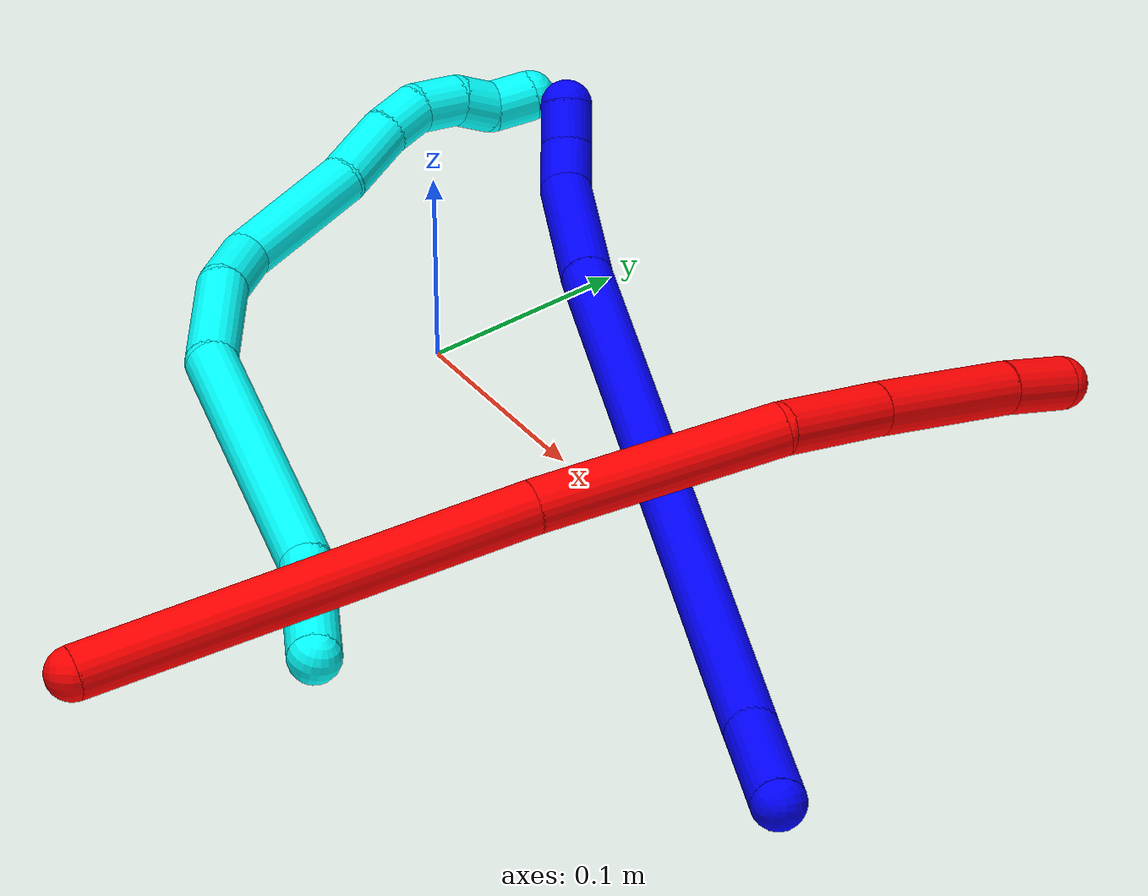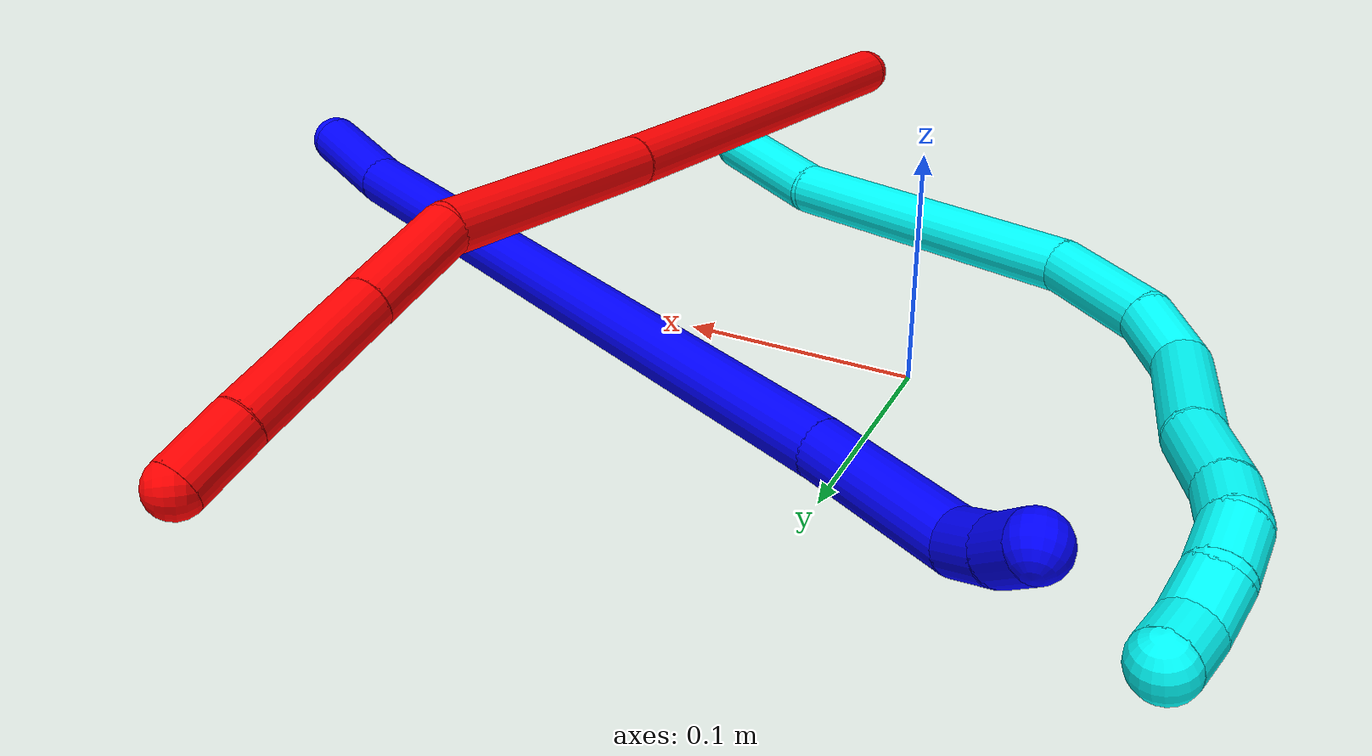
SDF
<sdf version="1.7">
 <world name="default">
  <model name="photoneo_s_sensor">
   <static>1</static>
   <pose>0 0 2 1.57079 1.57079 3.14159</pose>
   <link name="link">
    <inertial><mass>0.1</mass></inertial>
    <sensor name="sensor" type="depth">
     <update_rate>30</update_rate>
     <camera>
      <horizontal_fov>1.22</horizontal_fov>
      <image><width>1920</width><height>1200</height><format>B8G8R8</format></image>
      <clip><near>0.1</near><far>4</far></clip>
      <depth_camera><output>points</output></depth_camera>
     </camera>
     <plugin name="camera_plugin" filename="libgazebo_ros_depth_camera.so">
      <baseline>0.2</baseline>
      <alwaysOn>1</alwaysOn>
      <updateRate>0.0</updateRate>
      <cameraName>camera_ir</cameraName>
      <imageTopicName>/camera/color/image_raw</imageTopicName>
      <cameraInfoTopicName>/camera/color/camera_info</cameraInfoTopicName>
      <depthImageTopicName>/camera/depth/image_raw</depthImageTopicName>
      <depthImageCameraInfoTopicName>/camera/depth/camera_info</depthImageCameraInfoTopicName>
      <pointCloudTopicName>/camera/depth/points</pointCloudTopicName>
      <frameName>fr_optical</frameName>
      <pointCloudCutoff>0.1</pointCloudCutoff>
      <pointCloudCutoffMax>2.0</pointCloudCutoffMax>
      <distortionK1>0</distortionK1>
      <distortionK2>0</distortionK2>
      <distortionK3>0</distortionK3>
      <distortionT1>0</distortionT1>
      <distortionT2>0</distortionT2>
      <CxPrime>0</CxPrime>
      <Cx>0</Cx>
      <Cy>0</Cy>
      <focalLength>0</focalLength>
      <hackBaseline>0</hackBaseline>
     </plugin>
    </sensor>
   </link>
  </model>
  <model name="bin">
   <static>1</static>
   <link name="bottom">
    <collision name="collision-bottom">
     <pose>0 0 -0.01 0 -0 0</pose>
     <geometry><box><size>0.8 0.6 0.02</size></box></geometry>
     <surface>
      <friction><ode><mu>100</mu><mu2>100</mu2></ode></friction>
      <contact><collide_bitmask>65535</collide_bitmask></contact>
     </surface>
    </collision>
   </link>
   <link name="west_wall">
    <collision name="collision-west_wall">
     <pose>-0.41 0 0.1 0 -0 0</pose>
     <geometry><box><size>0.02 0.6 0.2</size></box></geometry>
     <surface>
      <friction><ode><mu>100</mu><mu2>100</mu2></ode></friction>
      <contact><collide_bitmask>65535</collide_bitmask></contact>
     </surface>
    </collision>
   </link>
   <link name="east_wall">
    <collision name="collision-east_wall">
     <pose>0.41 0 0.1 0 -0 0</pose>
     <geometry><box><size>0.02 0.6 0.2</size></box></geometry>
     <surface>
      <friction><ode><mu>100</mu><mu2>100</mu2></ode></friction>
      <contact><collide_bitmask>65535</collide_bitmask></contact>
     </surface>
    </collision>
   </link>
   <link name="south_wall">
    <collision name="collision-south_wall">
     <pose>0 -0.31 0.1 0 -0 0</pose>
     <geometry><box><size>0.8 0.02 0.2</size></box></geometry>
     <surface>
      <friction><ode><mu>100</mu><mu2>100</mu2></ode></friction>
      <contact><collide_bitmask>65535</collide_bitmask></contact>
     </surface>
    </collision>
   </link>
   <link name="north_wall">
    <collision name="collision-north_wall">
     <pose>0 0.31 0.1 0 -0 0</pose>
     <geometry><box><size>0.8 0.02 0.2</size></box></geometry>
     <surface>
      <friction><ode><mu>100</mu><mu2>100</mu2></ode></friction>
      <contact><collide_bitmask>65535</collide_bitmask></contact>
     </surface>
    </collision>
   </link>
  </model>
  <model name="1">
   <static>0</static>
   <link name="1">
    <collision name="collision-cylinder-e_1_1_4">
     <pose>-0.020728 -0.006324 -0.016088 2.76704 -0.87568 -2.37235</pose>
     <geometry><cylinder><radius>0.0125</radius><length>0.05398</length></cylinder></geometry>
     <surface>
      <friction><ode><mu>1.16</mu><mu2>1.16</mu2><slip1>0</slip1><slip2>0</slip2></ode></friction>
      <contact><ode><kp>1e+06</kp><kd>1</kd><max_vel>0</max_vel><min_depth>0.001</min_depth></ode></contact>
     </surface>
    </collision>
    <visual name="visual-cylinder-e_1_1_4">
     <pose>-0.020728 -0.006324 -0.016088 2.76704 -0.87568 -2.37235</pose>
     <geometry><cylinder><radius>0.0125</radius><length>0.05398</length></cylinder></geometry>
     <material><ambient>0 0 1 1</ambient></material>
    </visual>
    <collision name="collision-cylinder-e_2_4_5">
     <pose>-0.178863 -0.038031 -0.120422 2.86152 -0.98169 -2.62587</pose>
     <geometry><cylinder><radius>0.0125</radius><length>0.33053</length></cylinder></geometry>
     <surface>
      <friction><ode><mu>1.16</mu><mu2>1.16</mu2><slip1>0</slip1><slip2>0</slip2></ode></friction>
      <contact><ode><kp>1e+06</kp><kd>1</kd><max_vel>0</max_vel><min_depth>0.001</min_depth></ode></contact>
     </surface>
    </collision>
    <visual name="visual-cylinder-e_2_4_5">
     <pose>-0.178863 -0.038031 -0.120422 2.86152 -0.98169 -2.62587</pose>
     <geometry><cylinder><radius>0.0125</radius><length>0.33053</length></cylinder></geometry>
     <material><ambient>0 0 1 1</ambient></material>
    </visual>
    <collision name="collision-cylinder-e_3_5_6">
     <pose>-0.344973 -0.067262 -0.229293 2.95711 -0.939599 -2.78116</pose>
     <geometry><cylinder><radius>0.0125</radius><length>0.071106</length></cylinder></geometry>
     <surface>
      <friction><ode><mu>1.16</mu><mu2>1.16</mu2><slip1>0</slip1><slip2>0</slip2></ode></friction>
      <contact><ode><kp>1e+06</kp><kd>1</kd><max_vel>0</max_vel><min_depth>0.001</min_depth></ode></contact>
     </surface>
    </collision>
    <visual name="visual-cylinder-e_3_5_6">
     <pose>-0.344973 -0.067262 -0.229293 2.95711 -0.939599 -2.78116</pose>
     <geometry><cylinder><radius>0.0125</radius><length>0.071106</length></cylinder></geometry>
     <material><ambient>0 0 1 1</ambient></material>
    </visual>
    <collision name="collision-cylinder-e_4_6_7">
     <pose>-0.383408 -0.067005 -0.255105 -2.47216 -0.973713 1.97899</pose>
     <geometry><cylinder><radius>0.0125</radius><length>0.023536</length></cylinder></geometry>
     <surface>
      <friction><ode><mu>1.16</mu><mu2>1.16</mu2><slip1>0</slip1><slip2>0</slip2></ode></friction>
      <contact><ode><kp>1e+06</kp><kd>1</kd><max_vel>0</max_vel><min_depth>0.001</min_depth></ode></contact>
     </surface>
    </collision>
    <visual name="visual-cylinder-e_4_6_7">
     <pose>-0.383408 -0.067005 -0.255105 -2.47216 -0.973713 1.97899</pose>
     <geometry><cylinder><radius>0.0125</radius><length>0.023536</length></cylinder></geometry>
     <material><ambient>0 0 1 1</ambient></material>
    </visual>
    <collision name="collision-cylinder-e_5_7_2">
     <pose>-0.401753 -0.057852 -0.263295 -2.10717 -0.972416 1.49732</pose>
     <geometry><cylinder><radius>0.0125</radius><length>0.020848</length></cylinder></geometry>
     <surface>
      <friction><ode><mu>1.16</mu><mu2>1.16</mu2><slip1>0</slip1><slip2>0</slip2></ode></friction>
      <contact><ode><kp>1e+06</kp><kd>1</kd><max_vel>0</max_vel><min_depth>0.001</min_depth></ode></contact>
     </surface>
    </collision>
    <visual name="visual-cylinder-e_5_7_2">
     <pose>-0.401753 -0.057852 -0.263295 -2.10717 -0.972416 1.49732</pose>
     <geometry><cylinder><radius>0.0125</radius><length>0.020848</length></cylinder></geometry>
     <material><ambient>0 0 1 1</ambient></material>
    </visual>
    <collision name="collision-sphere-2">
     <pose>-0.410365 -0.052805 -0.266295 0 -0 0</pose>
     <geometry><sphere><radius>0.0125</radius></sphere></geometry>
     <surface>
      <friction><ode><mu>1.16</mu><mu2>1.16</mu2><slip1>0</slip1><slip2>0</slip2></ode></friction>
      <contact><ode><kp>1e+06</kp><kd>1</kd><max_vel>0</max_vel><min_depth>0.001</min_depth></ode></contact>
     </surface>
    </collision>
    <visual name="visual-sphere-2">
     <pose>-0.410365 -0.052805 -0.266295 0 -0 0</pose>
     <geometry><sphere><radius>0.0125</radius></sphere></geometry>
     <material><ambient>0 0 1 1</ambient></material>
    </visual>
    <collision name="collision-sphere-7">
     <pose>-0.39314 -0.062899 -0.260294 0 -0 0</pose>
     <geometry><sphere><radius>0.0125</radius></sphere></geometry>
     <surface>
      <friction><ode><mu>1.16</mu><mu2>1.16</mu2><slip1>0</slip1><slip2>0</slip2></ode></friction>
      <contact><ode><kp>1e+06</kp><kd>1</kd><max_vel>0</max_vel><min_depth>0.001</min_depth></ode></contact>
     </surface>
    </collision>
    <visual name="visual-sphere-7">
     <pose>-0.39314 -0.062899 -0.260294 0 -0 0</pose>
     <geometry><sphere><radius>0.0125</radius></sphere></geometry>
     <material><ambient>0 0 1 1</ambient></material>
    </visual>
    <collision name="collision-sphere-6">
     <pose>-0.373676 -0.071111 -0.249917 0 -0 0</pose>
     <geometry><sphere><radius>0.0125</radius></sphere></geometry>
     <surface>
      <friction><ode><mu>1.16</mu><mu2>1.16</mu2><slip1>0</slip1><slip2>0</slip2></ode></friction>
      <contact><ode><kp>1e+06</kp><kd>1</kd><max_vel>0</max_vel><min_depth>0.001</min_depth></ode></contact>
     </surface>
    </collision>
    <visual name="visual-sphere-6">
     <pose>-0.373676 -0.071111 -0.249917 0 -0 0</pose>
     <geometry><sphere><radius>0.0125</radius></sphere></geometry>
     <material><ambient>0 0 1 1</ambient></material>
    </visual>
    <collision name="collision-sphere-5">
     <pose>-0.31627 -0.063414 -0.208668 0 -0 0</pose>
     <geometry><sphere><radius>0.0125</radius></sphere></geometry>
     <surface>
      <friction><ode><mu>1.16</mu><mu2>1.16</mu2><slip1>0</slip1><slip2>0</slip2></ode></friction>
      <contact><ode><kp>1e+06</kp><kd>1</kd><max_vel>0</max_vel><min_depth>0.001</min_depth></ode></contact>
     </surface>
    </collision>
    <visual name="visual-sphere-5">
     <pose>-0.31627 -0.063414 -0.208668 0 -0 0</pose>
     <geometry><sphere><radius>0.0125</radius></sphere></geometry>
     <material><ambient>0 0 1 1</ambient></material>
    </visual>
    <collision name="collision-sphere-1">
     <geometry><sphere><radius>0.0125</radius></sphere></geometry>
     <surface>
      <friction><ode><mu>1.16</mu><mu2>1.16</mu2><slip1>0</slip1><slip2>0</slip2></ode></friction>
      <contact><ode><kp>1e+06</kp><kd>1</kd><max_vel>0</max_vel><min_depth>0.001</min_depth></ode></contact>
     </surface>
    </collision>
    <visual name="visual-sphere-1">
     <geometry><sphere><radius>0.0125</radius></sphere></geometry>
     <material><ambient>0 0 1 1</ambient></material>
    </visual>
    <collision name="collision-sphere-4">
     <pose>-0.041455 -0.012649 -0.032176 0 -0 0</pose>
     <geometry><sphere><radius>0.0125</radius></sphere></geometry>
     <surface>
      <friction><ode><mu>1.16</mu><mu2>1.16</mu2><slip1>0</slip1><slip2>0</slip2></ode></friction>
      <contact><ode><kp>1e+06</kp><kd>1</kd><max_vel>0</max_vel><min_depth>0.001</min_depth></ode></contact>
     </surface>
    </collision>
    <visual name="visual-sphere-4">
     <pose>-0.041455 -0.012649 -0.032176 0 -0 0</pose>
     <geometry><sphere><radius>0.0125</radius></sphere></geometry>
     <material><ambient>0 0 1 1</ambient></material>
    </visual>
    <inertial>
     <pose>-0.204336 -0.040956 -0.136938 0 -0 0</pose>
     <mass>0.5</mass>
     <inertia>
      <ixx>-0.002358</ixx>
      <ixy>0</ixy>
      <ixz>0</ixz>
      <iyy>0.002073</iyy>
      <iyz>0</iyz>
      <izz>0.003003</izz>
     </inertia>
    </inertial>
   </link>
   <pose>0.356163 -0.07522 0.017799 1.12849 0.41604 0.010042</pose>
  </model>
  <model name="2">
   <static>0</static>
   <link name="2">
    <collision name="collision-cylinder-e_1_1_4">
     <pose>0.038939 0.051101 -0.088487 -2.61788 0.364083 -1.20368</pose>
     <geometry><cylinder><radius>0.0125</radius><length>0.218701</length></cylinder></geometry>
     <surface>
      <friction><ode><mu>1.16</mu><mu2>1.16</mu2><slip1>0</slip1><slip2>0</slip2></ode></friction>
      <contact><ode><kp>1e+06</kp><kd>1</kd><max_vel>0</max_vel><min_depth>0.001</min_depth></ode></contact>
     </surface>
    </collision>
    <visual name="visual-cylinder-e_1_1_4">
     <pose>0.038939 0.051101 -0.088487 -2.61788 0.364083 -1.20368</pose>
     <geometry><cylinder><radius>0.0125</radius><length>0.218701</length></cylinder></geometry>
     <material><ambient>1 0 0 1</ambient></material>
    </visual>
    <collision name="collision-cylinder-e_2_4_5">
     <pose>0.097325 0.128733 -0.227298 -2.65642 0.329394 -1.18287</pose>
     <geometry><cylinder><radius>0.0125</radius><length>0.120242</length></cylinder></geometry>
     <surface>
      <friction><ode><mu>1.16</mu><mu2>1.16</mu2><slip1>0</slip1><slip2>0</slip2></ode></friction>
      <contact><ode><kp>1e+06</kp><kd>1</kd><max_vel>0</max_vel><min_depth>0.001</min_depth></ode></contact>
     </surface>
    </collision>
    <visual name="visual-cylinder-e_2_4_5">
     <pose>0.097325 0.128733 -0.227298 -2.65642 0.329394 -1.18287</pose>
     <geometry><cylinder><radius>0.0125</radius><length>0.120242</length></cylinder></geometry>
     <material><ambient>1 0 0 1</ambient></material>
    </visual>
    <collision name="collision-cylinder-e_3_5_6">
     <pose>0.121944 0.174062 -0.29617 -2.34949 0.193381 -0.455855</pose>
     <geometry><cylinder><radius>0.0125</radius><length>0.053822</length></cylinder></geometry>
     <surface>
      <friction><ode><mu>1.16</mu><mu2>1.16</mu2><slip1>0</slip1><slip2>0</slip2></ode></friction>
      <contact><ode><kp>1e+06</kp><kd>1</kd><max_vel>0</max_vel><min_depth>0.001</min_depth></ode></contact>
     </surface>
    </collision>
    <visual name="visual-cylinder-e_3_5_6">
     <pose>0.121944 0.174062 -0.29617 -2.34949 0.193381 -0.455855</pose>
     <geometry><cylinder><radius>0.0125</radius><length>0.053822</length></cylinder></geometry>
     <material><ambient>1 0 0 1</ambient></material>
    </visual>
    <collision name="collision-cylinder-e_4_6_7">
     <pose>0.133138 0.218539 -0.34037 -2.35569 0.164421 -0.392447</pose>
     <geometry><cylinder><radius>0.0125</radius><length>0.073582</length></cylinder></geometry>
     <surface>
      <friction><ode><mu>1.16</mu><mu2>1.16</mu2><slip1>0</slip1><slip2>0</slip2></ode></friction>
      <contact><ode><kp>1e+06</kp><kd>1</kd><max_vel>0</max_vel><min_depth>0.001</min_depth></ode></contact>
     </surface>
    </collision>
    <visual name="visual-cylinder-e_4_6_7">
     <pose>0.133138 0.218539 -0.34037 -2.35569 0.164421 -0.392447</pose>
     <geometry><cylinder><radius>0.0125</radius><length>0.073582</length></cylinder></geometry>
     <material><ambient>1 0 0 1</ambient></material>
    </visual>
    <collision name="collision-cylinder-e_5_7_2">
     <pose>0.140852 0.256174 -0.377738 -2.34601 0.100721 -0.238765</pose>
     <geometry><cylinder><radius>0.0125</radius><length>0.033653</length></cylinder></geometry>
     <surface>
      <friction><ode><mu>1.16</mu><mu2>1.16</mu2><slip1>0</slip1><slip2>0</slip2></ode></friction>
      <contact><ode><kp>1e+06</kp><kd>1</kd><max_vel>0</max_vel><min_depth>0.001</min_depth></ode></contact>
     </surface>
    </collision>
    <visual name="visual-cylinder-e_5_7_2">
     <pose>0.140852 0.256174 -0.377738 -2.34601 0.100721 -0.238765</pose>
     <geometry><cylinder><radius>0.0125</radius><length>0.033653</length></cylinder></geometry>
     <material><ambient>1 0 0 1</ambient></material>
    </visual>
    <collision name="collision-sphere-2">
     <pose>0.142544 0.268131 -0.389455 0 -0 0</pose>
     <geometry><sphere><radius>0.0125</radius></sphere></geometry>
     <surface>
      <friction><ode><mu>1.16</mu><mu2>1.16</mu2><slip1>0</slip1><slip2>0</slip2></ode></friction>
      <contact><ode><kp>1e+06</kp><kd>1</kd><max_vel>0</max_vel><min_depth>0.001</min_depth></ode></contact>
     </surface>
    </collision>
    <visual name="visual-sphere-2">
     <pose>0.142544 0.268131 -0.389455 0 -0 0</pose>
     <geometry><sphere><radius>0.0125</radius></sphere></geometry>
     <material><ambient>1 0 0 1</ambient></material>
    </visual>
    <collision name="collision-sphere-7">
     <pose>0.13916 0.244216 -0.366021 0 -0 0</pose>
     <geometry><sphere><radius>0.0125</radius></sphere></geometry>
     <surface>
      <friction><ode><mu>1.16</mu><mu2>1.16</mu2><slip1>0</slip1><slip2>0</slip2></ode></friction>
      <contact><ode><kp>1e+06</kp><kd>1</kd><max_vel>0</max_vel><min_depth>0.001</min_depth></ode></contact>
     </surface>
    </collision>
    <visual name="visual-sphere-7">
     <pose>0.13916 0.244216 -0.366021 0 -0 0</pose>
     <geometry><sphere><radius>0.0125</radius></sphere></geometry>
     <material><ambient>1 0 0 1</ambient></material>
    </visual>
    <collision name="collision-sphere-6">
     <pose>0.127116 0.192862 -0.314719 0 -0 0</pose>
     <geometry><sphere><radius>0.0125</radius></sphere></geometry>
     <surface>
      <friction><ode><mu>1.16</mu><mu2>1.16</mu2><slip1>0</slip1><slip2>0</slip2></ode></friction>
      <contact><ode><kp>1e+06</kp><kd>1</kd><max_vel>0</max_vel><min_depth>0.001</min_depth></ode></contact>
     </surface>
    </collision>
    <visual name="visual-sphere-6">
     <pose>0.127116 0.192862 -0.314719 0 -0 0</pose>
     <geometry><sphere><radius>0.0125</radius></sphere></geometry>
     <material><ambient>1 0 0 1</ambient></material>
    </visual>
    <collision name="collision-sphere-5">
     <pose>0.116773 0.155263 -0.277622 0 -0 0</pose>
     <geometry><sphere><radius>0.0125</radius></sphere></geometry>
     <surface>
      <friction><ode><mu>1.16</mu><mu2>1.16</mu2><slip1>0</slip1><slip2>0</slip2></ode></friction>
      <contact><ode><kp>1e+06</kp><kd>1</kd><max_vel>0</max_vel><min_depth>0.001</min_depth></ode></contact>
     </surface>
    </collision>
    <visual name="visual-sphere-5">
     <pose>0.116773 0.155263 -0.277622 0 -0 0</pose>
     <geometry><sphere><radius>0.0125</radius></sphere></geometry>
     <material><ambient>1 0 0 1</ambient></material>
    </visual>
    <collision name="collision-sphere-1">
     <geometry><sphere><radius>0.0125</radius></sphere></geometry>
     <surface>
      <friction><ode><mu>1.16</mu><mu2>1.16</mu2><slip1>0</slip1><slip2>0</slip2></ode></friction>
      <contact><ode><kp>1e+06</kp><kd>1</kd><max_vel>0</max_vel><min_depth>0.001</min_depth></ode></contact>
     </surface>
    </collision>
    <visual name="visual-sphere-1">
     <geometry><sphere><radius>0.0125</radius></sphere></geometry>
     <material><ambient>1 0 0 1</ambient></material>
    </visual>
    <collision name="collision-sphere-4">
     <pose>0.077878 0.102202 -0.176975 0 -0 0</pose>
     <geometry><sphere><radius>0.0125</radius></sphere></geometry>
     <surface>
      <friction><ode><mu>1.16</mu><mu2>1.16</mu2><slip1>0</slip1><slip2>0</slip2></ode></friction>
      <contact><ode><kp>1e+06</kp><kd>1</kd><max_vel>0</max_vel><min_depth>0.001</min_depth></ode></contact>
     </surface>
    </collision>
    <visual name="visual-sphere-4">
     <pose>0.077878 0.102202 -0.176975 0 -0 0</pose>
     <geometry><sphere><radius>0.0125</radius></sphere></geometry>
     <material><ambient>1 0 0 1</ambient></material>
    </visual>
    <inertial>
     <pose>0.082637 0.12145 -0.200761 0 -0 0</pose>
     <mass>0.5</mass>
     <inertia>
      <ixx>-0.00051</ixx>
      <ixy>0</ixy>
      <ixz>0</ixz>
      <iyy>-0.001089</iyy>
      <iyz>0</iyz>
      <izz>-0.000918</izz>
     </inertia>
    </inertial>
   </link>
   <pose>0.124067 -0.277333 0.031082 -1.70115 -0.913818 2.43451</pose>
  </model>
  <model name="3">
   <static>0</static>
   <link name="3">
    <collision name="collision-cylinder-e_1_1_4">
     <pose>-0.029544 0.013984 -0.001623 -1.68633 -1.12612 1.2331</pose>
     <geometry><cylinder><radius>0.0125</radius><length>0.065453</length></cylinder></geometry>
     <surface>
      <friction><ode><mu>1.16</mu><mu2>1.16</mu2><slip1>0</slip1><slip2>0</slip2></ode></friction>
      <contact><ode><kp>1e+06</kp><kd>1</kd><max_vel>0</max_vel><min_depth>0.001</min_depth></ode></contact>
     </surface>
    </collision>
    <visual name="visual-cylinder-e_1_1_4">
     <pose>-0.029544 0.013984 -0.001623 -1.68633 -1.12612 1.2331</pose>
     <geometry><cylinder><radius>0.0125</radius><length>0.065453</length></cylinder></geometry>
     <material><ambient>0.003922 1 0.996078 1</ambient></material>
    </visual>
    <collision name="collision-cylinder-e_2_4_5">
     <pose>-0.131987 0.041606 -0.005925 -1.76474 -1.38239 1.57644</pose>
     <geometry><cylinder><radius>0.0125</radius><length>0.148423</length></cylinder></geometry>
     <surface>
      <friction><ode><mu>1.16</mu><mu2>1.16</mu2><slip1>0</slip1><slip2>0</slip2></ode></friction>
      <contact><ode><kp>1e+06</kp><kd>1</kd><max_vel>0</max_vel><min_depth>0.001</min_depth></ode></contact>
     </surface>
    </collision>
    <visual name="visual-cylinder-e_2_4_5">
     <pose>-0.131987 0.041606 -0.005925 -1.76474 -1.38239 1.57644</pose>
     <geometry><cylinder><radius>0.0125</radius><length>0.148423</length></cylinder></geometry>
     <material><ambient>0.003922 1 0.996078 1</ambient></material>
    </visual>
    <collision name="collision-cylinder-e_3_5_6">
     <pose>-0.228911 0.07027 -0.007842 -1.52019 -1.01135 0.969032</pose>
     <geometry><cylinder><radius>0.0125</radius><length>0.056694</length></cylinder></geometry>
     <surface>
      <friction><ode><mu>1.16</mu><mu2>1.16</mu2><slip1>0</slip1><slip2>0</slip2></ode></friction>
      <contact><ode><kp>1e+06</kp><kd>1</kd><max_vel>0</max_vel><min_depth>0.001</min_depth></ode></contact>
     </surface>
    </collision>
    <visual name="visual-cylinder-e_3_5_6">
     <pose>-0.228911 0.07027 -0.007842 -1.52019 -1.01135 0.969032</pose>
     <geometry><cylinder><radius>0.0125</radius><length>0.056694</length></cylinder></geometry>
     <material><ambient>0.003922 1 0.996078 1</ambient></material>
    </visual>
    <collision name="collision-cylinder-e_4_6_7">
     <pose>-0.264044 0.097573 -0.008311 -1.67057 -0.732911 0.802263</pose>
     <geometry><cylinder><radius>0.0125</radius><length>0.033204</length></cylinder></geometry>
     <surface>
      <friction><ode><mu>1.16</mu><mu2>1.16</mu2><slip1>0</slip1><slip2>0</slip2></ode></friction>
      <contact><ode><kp>1e+06</kp><kd>1</kd><max_vel>0</max_vel><min_depth>0.001</min_depth></ode></contact>
     </surface>
    </collision>
    <visual name="visual-cylinder-e_4_6_7">
     <pose>-0.264044 0.097573 -0.008311 -1.67057 -0.732911 0.802263</pose>
     <geometry><cylinder><radius>0.0125</radius><length>0.033204</length></cylinder></geometry>
     <material><ambient>0.003922 1 0.996078 1</ambient></material>
    </visual>
    <collision name="collision-cylinder-e_5_7_8">
     <pose>-0.287047 0.140727 -0.000364 -1.28193 -0.353762 0.265146</pose>
     <geometry><cylinder><radius>0.0125</radius><length>0.068676</length></cylinder></geometry>
     <surface>
      <friction><ode><mu>1.16</mu><mu2>1.16</mu2><slip1>0</slip1><slip2>0</slip2></ode></friction>
      <contact><ode><kp>1e+06</kp><kd>1</kd><max_vel>0</max_vel><min_depth>0.001</min_depth></ode></contact>
     </surface>
    </collision>
    <visual name="visual-cylinder-e_5_7_8">
     <pose>-0.287047 0.140727 -0.000364 -1.28193 -0.353762 0.265146</pose>
     <geometry><cylinder><radius>0.0125</radius><length>0.068676</length></cylinder></geometry>
     <material><ambient>0.003922 1 0.996078 1</ambient></material>
    </visual>
    <collision name="collision-cylinder-e_6_8_9">
     <pose>-0.309072 0.187664 0.012919 -1.32044 -0.548525 0.430156</pose>
     <geometry><cylinder><radius>0.0125</radius><length>0.038853</length></cylinder></geometry>
     <surface>
      <friction><ode><mu>1.16</mu><mu2>1.16</mu2><slip1>0</slip1><slip2>0</slip2></ode></friction>
      <contact><ode><kp>1e+06</kp><kd>1</kd><max_vel>0</max_vel><min_depth>0.001</min_depth></ode></contact>
     </surface>
    </collision>
    <visual name="visual-cylinder-e_6_8_9">
     <pose>-0.309072 0.187664 0.012919 -1.32044 -0.548525 0.430156</pose>
     <geometry><cylinder><radius>0.0125</radius><length>0.038853</length></cylinder></geometry>
     <material><ambient>0.003922 1 0.996078 1</ambient></material>
    </visual>
    <collision name="collision-cylinder-e_7_9_10">
     <pose>-0.323626 0.214311 0.019481 -1.34292 -0.386675 0.308677</pose>
     <geometry><cylinder><radius>0.0125</radius><length>0.023469</length></cylinder></geometry>
     <surface>
      <friction><ode><mu>1.16</mu><mu2>1.16</mu2><slip1>0</slip1><slip2>0</slip2></ode></friction>
      <contact><ode><kp>1e+06</kp><kd>1</kd><max_vel>0</max_vel><min_depth>0.001</min_depth></ode></contact>
     </surface>
    </collision>
    <visual name="visual-cylinder-e_7_9_10">
     <pose>-0.323626 0.214311 0.019481 -1.34292 -0.386675 0.308677</pose>
     <geometry><cylinder><radius>0.0125</radius><length>0.023469</length></cylinder></geometry>
     <material><ambient>0.003922 1 0.996078 1</ambient></material>
    </visual>
    <collision name="collision-cylinder-e_8_10_11">
     <pose>-0.328633 0.236739 0.022298 -1.54029 -0.049086 0.047612</pose>
     <geometry><cylinder><radius>0.0125</radius><length>0.023723</length></cylinder></geometry>
     <surface>
      <friction><ode><mu>1.16</mu><mu2>1.16</mu2><slip1>0</slip1><slip2>0</slip2></ode></friction>
      <contact><ode><kp>1e+06</kp><kd>1</kd><max_vel>0</max_vel><min_depth>0.001</min_depth></ode></contact>
     </surface>
    </collision>
    <visual name="visual-cylinder-e_8_10_11">
     <pose>-0.328633 0.236739 0.022298 -1.54029 -0.049086 0.047612</pose>
     <geometry><cylinder><radius>0.0125</radius><length>0.023723</length></cylinder></geometry>
     <material><ambient>0.003922 1 0.996078 1</ambient></material>
    </visual>
    <collision name="collision-cylinder-e_9_11_12">
     <pose>-0.327684 0.258291 0.020168 -1.82192 0.151572 -0.195117</pose>
     <geometry><cylinder><radius>0.0125</radius><length>0.020281</length></cylinder></geometry>
     <surface>
      <friction><ode><mu>1.16</mu><mu2>1.16</mu2><slip1>0</slip1><slip2>0</slip2></ode></friction>
      <contact><ode><kp>1e+06</kp><kd>1</kd><max_vel>0</max_vel><min_depth>0.001</min_depth></ode></contact>
     </surface>
    </collision>
    <visual name="visual-cylinder-e_9_11_12">
     <pose>-0.327684 0.258291 0.020168 -1.82192 0.151572 -0.195117</pose>
     <geometry><cylinder><radius>0.0125</radius><length>0.020281</length></cylinder></geometry>
     <material><ambient>0.003922 1 0.996078 1</ambient></material>
    </visual>
    <collision name="collision-cylinder-e_10_12_2">
     <pose>-0.325337 0.278245 0.020325 -1.31783 0.076976 -0.059619</pose>
     <geometry><cylinder><radius>0.0125</radius><length>0.021224</length></cylinder></geometry>
     <surface>
      <friction><ode><mu>1.16</mu><mu2>1.16</mu2><slip1>0</slip1><slip2>0</slip2></ode></friction>
      <contact><ode><kp>1e+06</kp><kd>1</kd><max_vel>0</max_vel><min_depth>0.001</min_depth></ode></contact>
     </surface>
    </collision>
    <visual name="visual-cylinder-e_10_12_2">
     <pose>-0.325337 0.278245 0.020325 -1.31783 0.076976 -0.059619</pose>
     <geometry><cylinder><radius>0.0125</radius><length>0.021224</length></cylinder></geometry>
     <material><ambient>0.003922 1 0.996078 1</ambient></material>
    </visual>
    <collision name="collision-sphere-2">
     <pose>-0.324521 0.288488 0.022973 0 -0 0</pose>
     <geometry><sphere><radius>0.0125</radius></sphere></geometry>
     <surface>
      <friction><ode><mu>1.16</mu><mu2>1.16</mu2><slip1>0</slip1><slip2>0</slip2></ode></friction>
      <contact><ode><kp>1e+06</kp><kd>1</kd><max_vel>0</max_vel><min_depth>0.001</min_depth></ode></contact>
     </surface>
    </collision>
    <visual name="visual-sphere-2">
     <pose>-0.324521 0.288488 0.022973 0 -0 0</pose>
     <geometry><sphere><radius>0.0125</radius></sphere></geometry>
     <material><ambient>0.003922 1 0.996078 1</ambient></material>
    </visual>
    <collision name="collision-sphere-12">
     <pose>-0.326153 0.268001 0.017677 0 -0 0</pose>
     <geometry><sphere><radius>0.0125</radius></sphere></geometry>
     <surface>
      <friction><ode><mu>1.16</mu><mu2>1.16</mu2><slip1>0</slip1><slip2>0</slip2></ode></friction>
      <contact><ode><kp>1e+06</kp><kd>1</kd><max_vel>0</max_vel><min_depth>0.001</min_depth></ode></contact>
     </surface>
    </collision>
    <visual name="visual-sphere-12">
     <pose>-0.326153 0.268001 0.017677 0 -0 0</pose>
     <geometry><sphere><radius>0.0125</radius></sphere></geometry>
     <material><ambient>0.003922 1 0.996078 1</ambient></material>
    </visual>
    <collision name="collision-sphere-11">
     <pose>-0.329215 0.248581 0.022659 0 -0 0</pose>
     <geometry><sphere><radius>0.0125</radius></sphere></geometry>
     <surface>
      <friction><ode><mu>1.16</mu><mu2>1.16</mu2><slip1>0</slip1><slip2>0</slip2></ode></friction>
      <contact><ode><kp>1e+06</kp><kd>1</kd><max_vel>0</max_vel><min_depth>0.001</min_depth></ode></contact>
     </surface>
    </collision>
    <visual name="visual-sphere-11">
     <pose>-0.329215 0.248581 0.022659 0 -0 0</pose>
     <geometry><sphere><radius>0.0125</radius></sphere></geometry>
     <material><ambient>0.003922 1 0.996078 1</ambient></material>
    </visual>
    <collision name="collision-sphere-10">
     <pose>-0.328051 0.224898 0.021936 0 -0 0</pose>
     <geometry><sphere><radius>0.0125</radius></sphere></geometry>
     <surface>
      <friction><ode><mu>1.16</mu><mu2>1.16</mu2><slip1>0</slip1><slip2>0</slip2></ode></friction>
      <contact><ode><kp>1e+06</kp><kd>1</kd><max_vel>0</max_vel><min_depth>0.001</min_depth></ode></contact>
     </surface>
    </collision>
    <visual name="visual-sphere-10">
     <pose>-0.328051 0.224898 0.021936 0 -0 0</pose>
     <geometry><sphere><radius>0.0125</radius></sphere></geometry>
     <material><ambient>0.003922 1 0.996078 1</ambient></material>
    </visual>
    <collision name="collision-sphere-9">
     <pose>-0.319201 0.203724 0.017026 0 -0 0</pose>
     <geometry><sphere><radius>0.0125</radius></sphere></geometry>
     <surface>
      <friction><ode><mu>1.16</mu><mu2>1.16</mu2><slip1>0</slip1><slip2>0</slip2></ode></friction>
      <contact><ode><kp>1e+06</kp><kd>1</kd><max_vel>0</max_vel><min_depth>0.001</min_depth></ode></contact>
     </surface>
    </collision>
    <visual name="visual-sphere-9">
     <pose>-0.319201 0.203724 0.017026 0 -0 0</pose>
     <geometry><sphere><radius>0.0125</radius></sphere></geometry>
     <material><ambient>0.003922 1 0.996078 1</ambient></material>
    </visual>
    <collision name="collision-sphere-4">
     <pose>-0.059088 0.027968 -0.003246 0 -0 0</pose>
     <geometry><sphere><radius>0.0125</radius></sphere></geometry>
     <surface>
      <friction><ode><mu>1.16</mu><mu2>1.16</mu2><slip1>0</slip1><slip2>0</slip2></ode></friction>
      <contact><ode><kp>1e+06</kp><kd>1</kd><max_vel>0</max_vel><min_depth>0.001</min_depth></ode></contact>
     </surface>
    </collision>
    <visual name="visual-sphere-4">
     <pose>-0.059088 0.027968 -0.003246 0 -0 0</pose>
     <geometry><sphere><radius>0.0125</radius></sphere></geometry>
     <material><ambient>0.003922 1 0.996078 1</ambient></material>
    </visual>
    <collision name="collision-sphere-1">
     <geometry><sphere><radius>0.0125</radius></sphere></geometry>
     <surface>
      <friction><ode><mu>1.16</mu><mu2>1.16</mu2><slip1>0</slip1><slip2>0</slip2></ode></friction>
      <contact><ode><kp>1e+06</kp><kd>1</kd><max_vel>0</max_vel><min_depth>0.001</min_depth></ode></contact>
     </surface>
    </collision>
    <visual name="visual-sphere-1">
     <geometry><sphere><radius>0.0125</radius></sphere></geometry>
     <material><ambient>0.003922 1 0.996078 1</ambient></material>
    </visual>
    <collision name="collision-sphere-8">
     <pose>-0.298942 0.171604 0.008812 0 -0 0</pose>
     <geometry><sphere><radius>0.0125</radius></sphere></geometry>
     <surface>
      <friction><ode><mu>1.16</mu><mu2>1.16</mu2><slip1>0</slip1><slip2>0</slip2></ode></friction>
      <contact><ode><kp>1e+06</kp><kd>1</kd><max_vel>0</max_vel><min_depth>0.001</min_depth></ode></contact>
     </surface>
    </collision>
    <visual name="visual-sphere-8">
     <pose>-0.298942 0.171604 0.008812 0 -0 0</pose>
     <geometry><sphere><radius>0.0125</radius></sphere></geometry>
     <material><ambient>0.003922 1 0.996078 1</ambient></material>
    </visual>
    <collision name="collision-sphere-5">
     <pose>-0.204885 0.055245 -0.008603 0 -0 0</pose>
     <geometry><sphere><radius>0.0125</radius></sphere></geometry>
     <surface>
      <friction><ode><mu>1.16</mu><mu2>1.16</mu2><slip1>0</slip1><slip2>0</slip2></ode></friction>
      <contact><ode><kp>1e+06</kp><kd>1</kd><max_vel>0</max_vel><min_depth>0.001</min_depth></ode></contact>
     </surface>
    </collision>
    <visual name="visual-sphere-5">
     <pose>-0.204885 0.055245 -0.008603 0 -0 0</pose>
     <geometry><sphere><radius>0.0125</radius></sphere></geometry>
     <material><ambient>0.003922 1 0.996078 1</ambient></material>
    </visual>
    <collision name="collision-sphere-6">
     <pose>-0.252936 0.085295 -0.007082 0 -0 0</pose>
     <geometry><sphere><radius>0.0125</radius></sphere></geometry>
     <surface>
      <friction><ode><mu>1.16</mu><mu2>1.16</mu2><slip1>0</slip1><slip2>0</slip2></ode></friction>
      <contact><ode><kp>1e+06</kp><kd>1</kd><max_vel>0</max_vel><min_depth>0.001</min_depth></ode></contact>
     </surface>
    </collision>
    <visual name="visual-sphere-6">
     <pose>-0.252936 0.085295 -0.007082 0 -0 0</pose>
     <geometry><sphere><radius>0.0125</radius></sphere></geometry>
     <material><ambient>0.003922 1 0.996078 1</ambient></material>
    </visual>
    <collision name="collision-sphere-7">
     <pose>-0.275151 0.10985 -0.00954 0 -0 0</pose>
     <geometry><sphere><radius>0.0125</radius></sphere></geometry>
     <surface>
      <friction><ode><mu>1.16</mu><mu2>1.16</mu2><slip1>0</slip1><slip2>0</slip2></ode></friction>
      <contact><ode><kp>1e+06</kp><kd>1</kd><max_vel>0</max_vel><min_depth>0.001</min_depth></ode></contact>
     </surface>
    </collision>
    <visual name="visual-sphere-7">
     <pose>-0.275151 0.10985 -0.00954 0 -0 0</pose>
     <geometry><sphere><radius>0.0125</radius></sphere></geometry>
     <material><ambient>0.003922 1 0.996078 1</ambient></material>
    </visual>
    <inertial>
     <pose>-0.207864 0.10612 0.001195 0 -0 0</pose>
     <mass>0.5</mass>
     <inertia>
      <ixx>0.000107</ixx>
      <ixy>0</ixy>
      <ixz>0</ixz>
      <iyy>0.000423</iyy>
      <iyz>0</iyz>
      <izz>0.000217</izz>
     </inertia>
    </inertial>
   </link>
   <pose>0.159285 -0.176826 0.013719 -0.206729 0.110896 -0.120957</pose>
  </model>
 </world>
</sdf>
